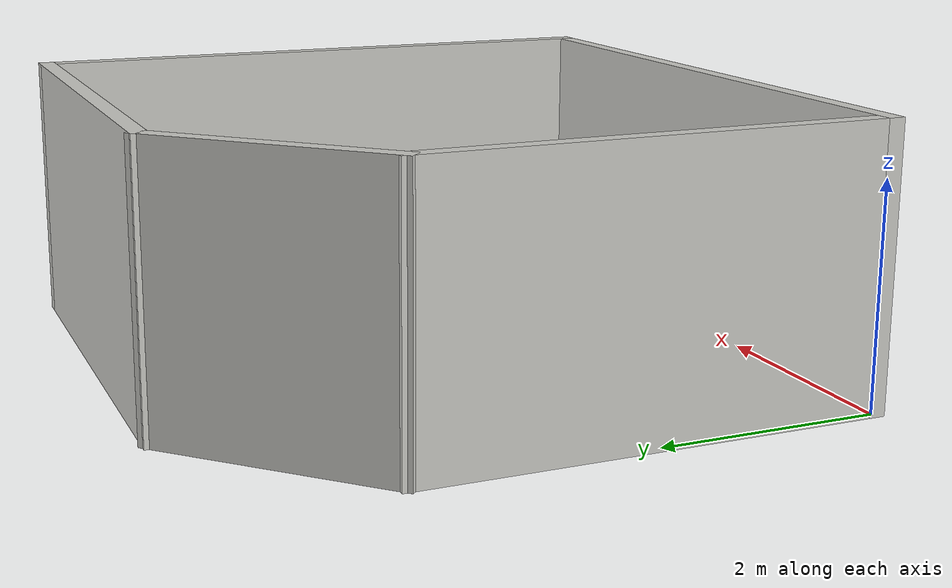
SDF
<?xml version='1.0'?>
<sdf version='1.7'>
  <model name='kitchen_no_sink_walls'>
    <pose>2.82197 2.85053 0 0 -0 0</pose>
    <link name='Wall_0'>
      <collision name='Wall_0_Collision'>
        <geometry>
          <box>
            <size>4.27 0.15 2.5</size>
          </box>
        </geometry>
        <pose>0 0 1.25 0 -0 0</pose>
      </collision>
      <visual name='Wall_0_Visual'>
        <pose>0 0 1.25 0 -0 0</pose>
        <geometry>
          <box>
            <size>4.27 0.15 2.5</size>
          </box>
        </geometry>
        <material>
          <script>
            <uri>file://media/materials/scripts/gazebo.material</uri>
            <name>Gazebo/CeilingTiled</name>
          </script>
          <ambient>1 1 1 1</ambient>
        </material>
        <meta>
          <layer>0</layer>
        </meta>
      </visual>
      <pose>-2.82197 -0.790533 0 0 -0 1.5708</pose>
    </link>
    <link name='Wall_11'>
      <collision name='Wall_11_Collision'>
        <geometry>
          <box>
            <size>2.34557 0.15 2.5</size>
          </box>
        </geometry>
        <pose>0 0 1.25 0 -0 0</pose>
      </collision>
      <visual name='Wall_11_Visual'>
        <pose>0 0 1.25 0 -0 0</pose>
        <geometry>
          <box>
            <size>2.34557 0.15 2.5</size>
          </box>
        </geometry>
        <material>
          <script>
            <uri>file://media/materials/scripts/gazebo.material</uri>
            <name>Gazebo/CeilingTiled</name>
          </script>
          <ambient>1 1 1 1</ambient>
        </material>
        <meta>
          <layer>0</layer>
        </meta>
      </visual>
      <pose>-2.04447 2.04447 0 0 -0 0.783788</pose>
    </link>
    <link name='Wall_4'>
      <collision name='Wall_4_Collision'>
        <geometry>
          <box>
            <size>5.825 0.15 2.5</size>
          </box>
        </geometry>
        <pose>0 0 1.25 0 -0 0</pose>
      </collision>
      <visual name='Wall_4_Visual'>
        <pose>0 0 1.25 0 -0 0</pose>
        <geometry>
          <box>
            <size>5.825 0.15 2.5</size>
          </box>
        </geometry>
        <material>
          <script>
            <uri>file://media/materials/scripts/gazebo.material</uri>
            <name>Gazebo/CeilingTiled</name>
          </script>
          <ambient>1 1 1 1</ambient>
        </material>
        <meta>
          <layer>0</layer>
        </meta>
      </visual>
      <pose>0.015533 -2.85053 0 0 -0 0</pose>
    </link>
    <link name='Wall_7'>
      <collision name='Wall_7_Collision'>
        <geometry>
          <box>
            <size>5.82 0.15 2.5</size>
          </box>
        </geometry>
        <pose>0 0 1.25 0 -0 0</pose>
      </collision>
      <visual name='Wall_7_Visual'>
        <pose>0 0 1.25 0 -0 0</pose>
        <geometry>
          <box>
            <size>5.82 0.15 2.5</size>
          </box>
        </geometry>
        <material>
          <script>
            <uri>file://media/materials/scripts/gazebo.material</uri>
            <name>Gazebo/CeilingTiled</name>
          </script>
          <ambient>1 1 1 1</ambient>
        </material>
        <meta>
          <layer>0</layer>
        </meta>
      </visual>
      <pose>2.85303 -0.015533 0 0 -0 1.5708</pose>
    </link>
    <link name='Wall_9'>
      <collision name='Wall_9_Collision'>
        <geometry>
          <box>
            <size>4.27 0.15 2.5</size>
          </box>
        </geometry>
        <pose>0 0 1.25 0 -0 0</pose>
      </collision>
      <visual name='Wall_9_Visual'>
        <pose>0 0 1.25 0 -0 0</pose>
        <geometry>
          <box>
            <size>4.27 0.15 2.5</size>
          </box>
        </geometry>
        <material>
          <script>
            <uri>file://media/materials/scripts/gazebo.material</uri>
            <name>Gazebo/CeilingTiled</name>
          </script>
          <ambient>1 1 1 1</ambient>
        </material>
        <meta>
          <layer>0</layer>
        </meta>
      </visual>
      <pose>0.793033 2.81947 0 0 -0 3.14159</pose>
    </link>
    <static>1</static>
  </model>
</sdf>
